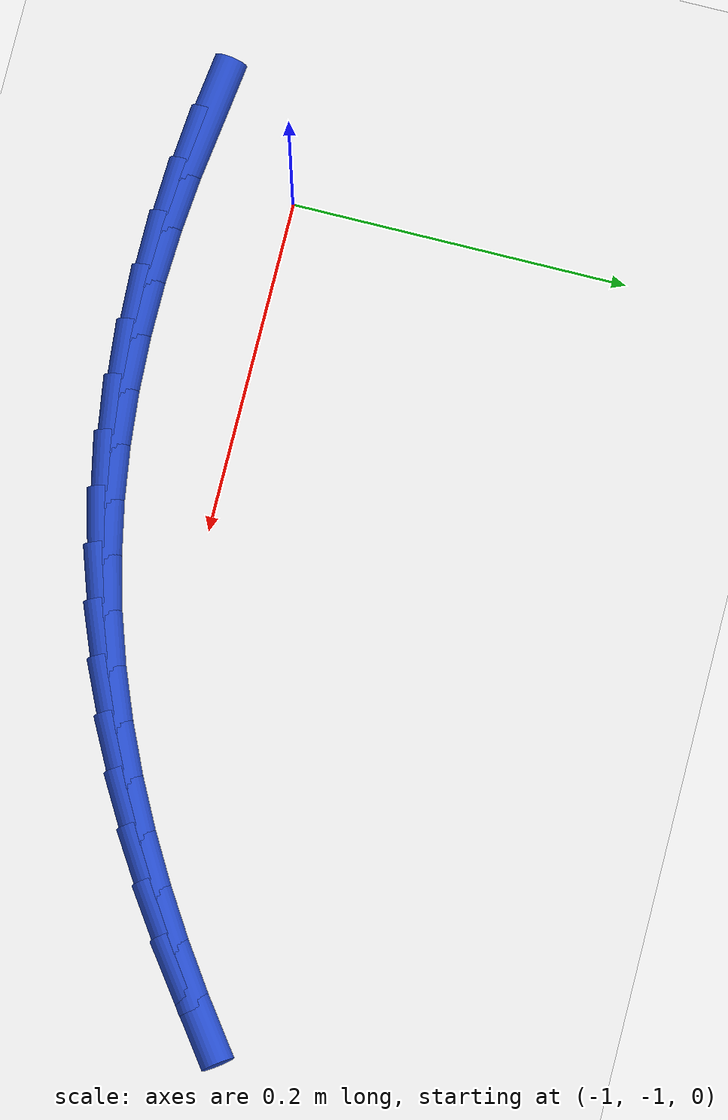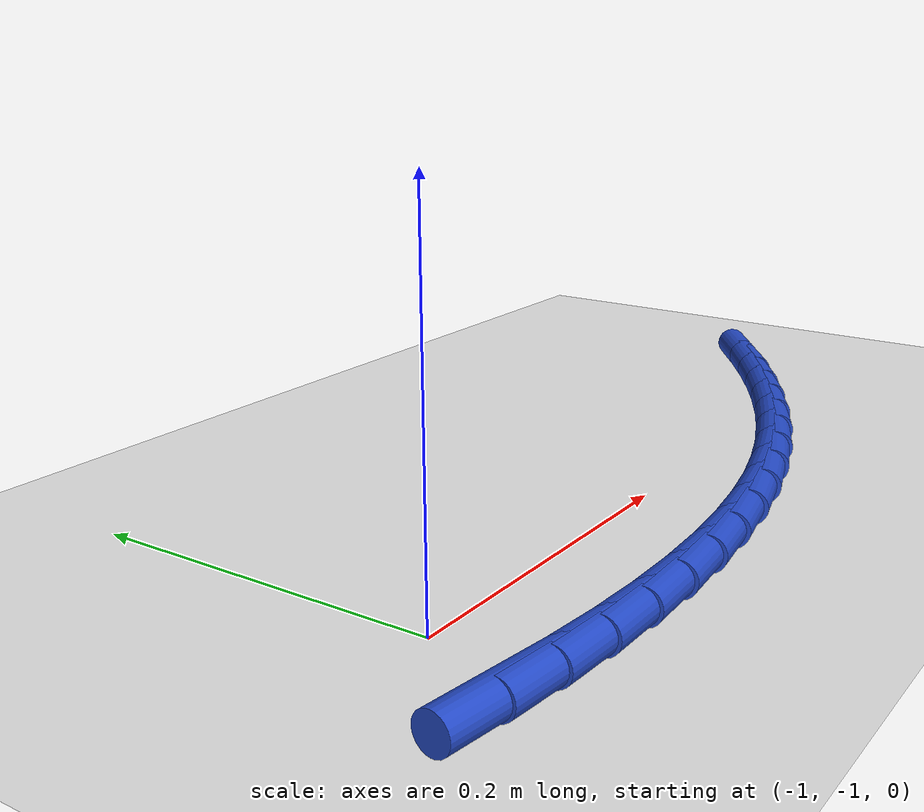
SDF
<sdf version="1.6">
 <world name="default">
  <model name="ground_plane">
   <static>1</static>
   <link name="link">
    <collision name="collision">
     <geometry><plane><normal>0 0 1</normal><size>100 100</size></plane></geometry>
     <surface><friction><ode><mu>100</mu><mu2>50</mu2></ode></friction></surface>
    </collision>
    <visual name="visual">
     <cast_shadows>0</cast_shadows>
     <geometry><plane><normal>0 0 1</normal><size>100 100</size></plane></geometry>
     <material>
      <script><uri>file://media/materials/scripts/gazebo.material</uri><name>Gazebo/WhiteGlow</name></script>
     </material>
    </visual>
   </link>
  </model>
  <model name="line">
   <link name="link_150">
    <pose>-1.0329940454351276 -1.060938500305538 0.01 0 1.57 -0.1323694235292915</pose>
    <collision name="collision">
     <geometry><cylinder><radius>0.01</radius><length>0.08</length></cylinder></geometry>
    </collision>
    <visual name="visual">
     <material>
      <script><name>Gazebo/Blue</name><uri>file://media/materials/scripts/gazebo.material</uri></script>
     </material>
     <geometry><cylinder><radius>0.01</radius><length>0.08</length></cylinder></geometry>
    </visual>
   </link>
   <link name="link_151">
    <pose>-1.0001215309689715 -1.0653154095847275 0.01 0 1.57 -0.0913643816669542</pose>
    <collision name="collision">
     <geometry><cylinder><radius>0.01</radius><length>0.08</length></cylinder></geometry>
    </collision>
    <visual name="visual">
     <material>
      <script><name>Gazebo/Blue</name><uri>file://media/materials/scripts/gazebo.material</uri></script>
     </material>
     <geometry><cylinder><radius>0.01</radius><length>0.08</length></cylinder></geometry>
    </visual>
   </link>
   <link name="link_152">
    <pose>-0.9670120201917648 -1.0683488848597174 0.01 0 1.57 -0.04855040675876646</pose>
    <collision name="collision">
     <geometry><cylinder><radius>0.01</radius><length>0.08</length></cylinder></geometry>
    </collision>
    <visual name="visual">
     <material>
      <script><name>Gazebo/Blue</name><uri>file://media/materials/scripts/gazebo.material</uri></script>
     </material>
     <geometry><cylinder><radius>0.01</radius><length>0.08</length></cylinder></geometry>
    </visual>
   </link>
   <link name="link_153">
    <pose>-0.9337748926127971 -1.0699638300076202 0.01 0 1.57 -0.003648083856652153</pose>
    <collision name="collision">
     <geometry><cylinder><radius>0.01</radius><length>0.08</length></cylinder></geometry>
    </collision>
    <visual name="visual">
     <material>
      <script><name>Gazebo/Blue</name><uri>file://media/materials/scripts/gazebo.material</uri></script>
     </material>
     <geometry><cylinder><radius>0.01</radius><length>0.08</length></cylinder></geometry>
    </visual>
   </link>
   <link name="link_154">
    <pose>-0.9005195277413566 -1.0700851489055467 0.01 0 1.57 0.043615843340383036</pose>
    <collision name="collision">
     <geometry><cylinder><radius>0.01</radius><length>0.08</length></cylinder></geometry>
    </collision>
    <visual name="visual">
     <material>
      <script><name>Gazebo/Blue</name><uri>file://media/materials/scripts/gazebo.material</uri></script>
     </material>
     <geometry><cylinder><radius>0.01</radius><length>0.08</length></cylinder></geometry>
    </visual>
   </link>
   <link name="link_155">
    <pose>-0.867355305086733 -1.0686377454306097 0.01 0 1.57 0.09350309443574635</pose>
    <collision name="collision">
     <geometry><cylinder><radius>0.01</radius><length>0.08</length></cylinder></geometry>
    </collision>
    <visual name="visual">
     <material>
      <script><name>Gazebo/Blue</name><uri>file://media/materials/scripts/gazebo.material</uri></script>
     </material>
     <geometry><cylinder><radius>0.01</radius><length>0.08</length></cylinder></geometry>
    </visual>
   </link>
   <link name="link_156">
    <pose>-0.8343916041582149 -1.0655465234599204 0.01 0 1.57 0.14625527142670544</pose>
    <collision name="collision">
     <geometry><cylinder><radius>0.01</radius><length>0.08</length></cylinder></geometry>
    </collision>
    <visual name="visual">
     <material>
      <script><name>Gazebo/Blue</name><uri>file://media/materials/scripts/gazebo.material</uri></script>
     </material>
     <geometry><cylinder><radius>0.01</radius><length>0.08</length></cylinder></geometry>
    </visual>
   </link>
   <link name="link_157">
    <pose>-0.8017378044650917 -1.060736386870591 0.01 0 1.57 0.20208162027298507</pose>
    <collision name="collision">
     <geometry><cylinder><radius>0.01</radius><length>0.08</length></cylinder></geometry>
    </collision>
    <visual name="visual">
     <material>
      <script><name>Gazebo/Blue</name><uri>file://media/materials/scripts/gazebo.material</uri></script>
     </material>
     <geometry><cylinder><radius>0.01</radius><length>0.08</length></cylinder></geometry>
    </visual>
   </link>
   <link name="link_158">
    <pose>-0.7695032855166523 -1.0541322395397335 0.01 0 1.57 0.26107850059417664</pose>
    <collision name="collision">
     <geometry><cylinder><radius>0.01</radius><length>0.08</length></cylinder></geometry>
    </collision>
    <visual name="visual">
     <material>
      <script><name>Gazebo/Blue</name><uri>file://media/materials/scripts/gazebo.material</uri></script>
     </material>
     <geometry><cylinder><radius>0.01</radius><length>0.08</length></cylinder></geometry>
    </visual>
   </link>
   <link name="link_159">
    <pose>-0.7377964117508946 -1.0456609017368381 0.01 0 1.57 0.3205010256321365</pose>
    <collision name="collision">
     <geometry><cylinder><radius>0.01</radius><length>0.08</length></cylinder></geometry>
    </collision>
    <visual name="visual">
     <material>
      <script><name>Gazebo/Blue</name><uri>file://media/materials/scripts/gazebo.material</uri></script>
     </material>
     <geometry><cylinder><radius>0.01</radius><length>0.08</length></cylinder></geometry>
    </visual>
   </link>
   <link name="link_160">
    <pose>-0.7066814583419714 -1.0353324315591543 0.01 0 1.57 0.3763903861152403</pose>
    <collision name="collision">
     <geometry><cylinder><radius>0.01</radius><length>0.08</length></cylinder></geometry>
    </collision>
    <visual name="visual">
     <material>
      <script><name>Gazebo/Blue</name><uri>file://media/materials/scripts/gazebo.material</uri></script>
     </material>
     <geometry><cylinder><radius>0.01</radius><length>0.08</length></cylinder></geometry>
    </visual>
   </link>
   <link name="link_161">
    <pose>-0.6761625955152349 -1.0232703615632186 0.01 0 1.57 0.4283617400267489</pose>
    <collision name="collision">
     <geometry><cylinder><radius>0.01</radius><length>0.08</length></cylinder></geometry>
    </collision>
    <visual name="visual">
     <material>
      <script><name>Gazebo/Blue</name><uri>file://media/materials/scripts/gazebo.material</uri></script>
     </material>
     <geometry><cylinder><radius>0.01</radius><length>0.08</length></cylinder></geometry>
    </visual>
   </link>
   <link name="link_162">
    <pose>-0.6462396785588582 -1.0096063706424865 0.01 0 1.57 0.4764043325387445</pose>
    <collision name="collision">
     <geometry><cylinder><radius>0.01</radius><length>0.08</length></cylinder></geometry>
    </collision>
    <visual name="visual">
     <material>
      <script><name>Gazebo/Blue</name><uri>file://media/materials/scripts/gazebo.material</uri></script>
     </material>
     <geometry><cylinder><radius>0.01</radius><length>0.08</length></cylinder></geometry>
    </visual>
   </link>
   <link name="link_163">
    <pose>-0.6169125627610141 -0.9944721376904144 0.01 0 1.57 0.5205832624777129</pose>
    <collision name="collision">
     <geometry><cylinder><radius>0.01</radius><length>0.08</length></cylinder></geometry>
    </collision>
    <visual name="visual">
     <material>
      <script><name>Gazebo/Blue</name><uri>file://media/materials/scripts/gazebo.material</uri></script>
     </material>
     <geometry><cylinder><radius>0.01</radius><length>0.08</length></cylinder></geometry>
    </visual>
   </link>
   <link name="link_164">
    <pose>-0.5881811034098754 -0.9779993416004574 0.01 0 1.57 0.5610163392627527</pose>
    <collision name="collision">
     <geometry><cylinder><radius>0.01</radius><length>0.08</length></cylinder></geometry>
    </collision>
    <visual name="visual">
     <material>
      <script><name>Gazebo/Blue</name><uri>file://media/materials/scripts/gazebo.material</uri></script>
     </material>
     <geometry><cylinder><radius>0.01</radius><length>0.08</length></cylinder></geometry>
    </visual>
   </link>
   <link name="link_165">
    <pose>-0.5600451557936149 -0.9603196612660715 0.01 0 1.57 0.5978539535609153</pose>
    <collision name="collision">
     <geometry><cylinder><radius>0.01</radius><length>0.08</length></cylinder></geometry>
    </collision>
    <visual name="visual">
     <material>
      <script><name>Gazebo/Blue</name><uri>file://media/materials/scripts/gazebo.material</uri></script>
     </material>
     <geometry><cylinder><radius>0.01</radius><length>0.08</length></cylinder></geometry>
    </visual>
   </link>
   <link name="link_166">
    <pose>-0.5325045752004056 -0.9415647755807119 0.01 0 1.57 0.6312625837418101</pose>
    <collision name="collision">
     <geometry><cylinder><radius>0.01</radius><length>0.08</length></cylinder></geometry>
    </collision>
    <visual name="visual">
     <material>
      <script><name>Gazebo/Blue</name><uri>file://media/materials/scripts/gazebo.material</uri></script>
     </material>
     <geometry><cylinder><radius>0.01</radius><length>0.08</length></cylinder></geometry>
    </visual>
   </link>
  </model>
 </world>
</sdf>
